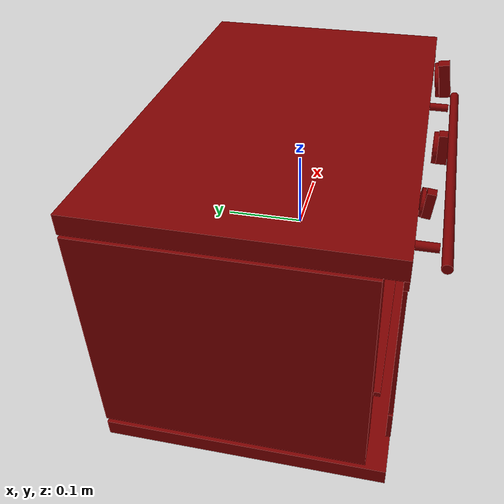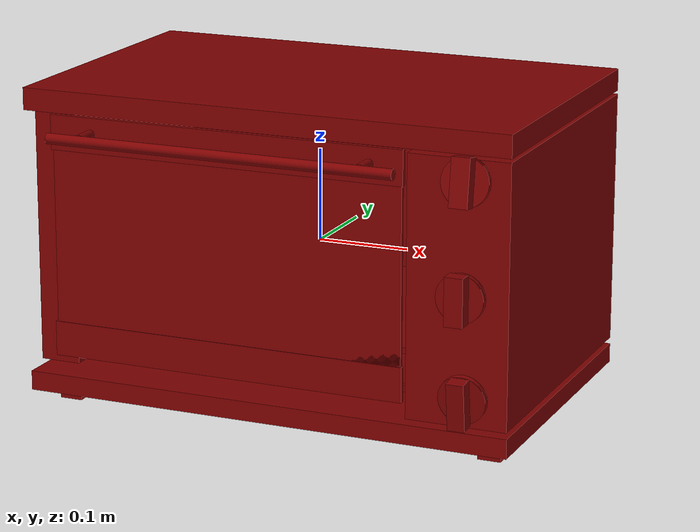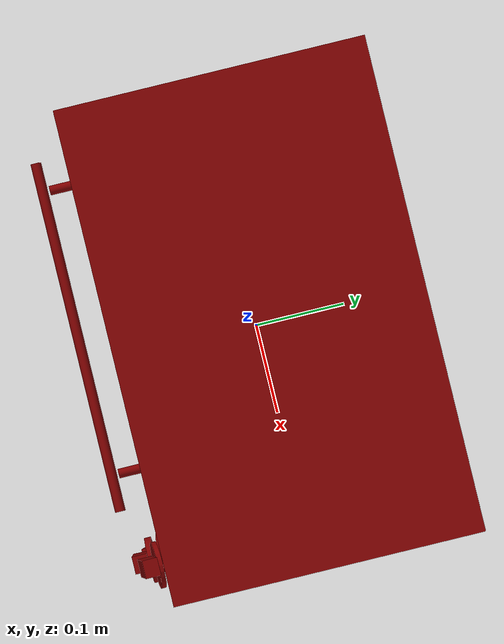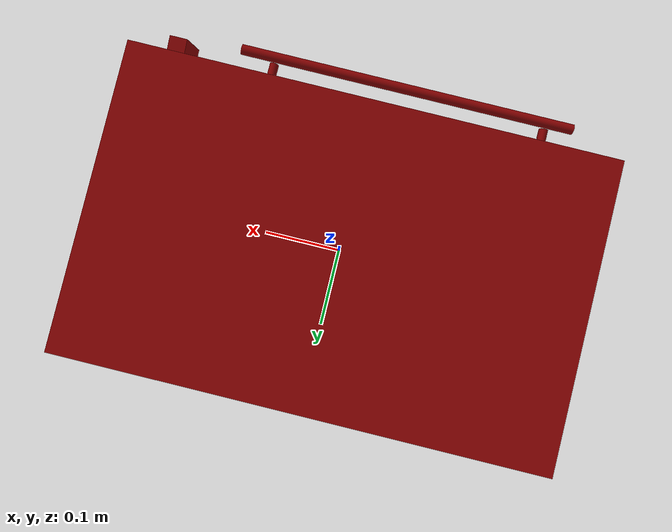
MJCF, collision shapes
<?xml version='1.0' encoding='UTF-8'?>
<mujoco model="model">
  <option timestep="0.002" gravity="0.0 0.0 -9.81"/>
  <compiler angle="radian"/>
  <asset>
    <mesh file="visuals/door.obj" name="door_vis"/>
    <mesh file="visuals/knob_function.obj" name="knob_function_vis"/>
    <mesh file="visuals/knob_temp.obj" name="knob_temp_vis"/>
    <mesh file="visuals/knob_time.obj" name="knob_time_vis"/>
    <mesh file="visuals/rack0.obj" name="rack0_vis"/>
    <mesh file="visuals/Body001.obj" name="Body001_vis"/>
    <mesh file="visuals/window.obj" name="window_vis"/>
    <texture file="visuals/T_BC001.png" name="Body001_material" type="2d"/>
    <material name="Body001_material" rgba="1 1 1 1.0" texture="Body001_material" shininess="0.1" specular="4"/>
    <texture file="visuals/T_BC001.png" name="door_material" type="2d"/>
    <material name="door_material" rgba="1 1 1 1.0" texture="door_material" shininess="0.1" specular="4"/>
    <texture file="visuals/T_BC001.png" name="window_material" type="2d"/>
    <material name="window_material" rgba="1 1 1 0.699999988079071" texture="window_material" shininess="0.1" specular="4"/>
    <texture file="visuals/T_BC001.png" name="knob_function_material" type="2d"/>
    <material name="knob_function_material" rgba="1 1 1 1.0" texture="knob_function_material" shininess="0.1" specular="4"/>
    <texture file="visuals/T_BC001.png" name="knob_temp_material" type="2d"/>
    <material name="knob_temp_material" rgba="1 1 1 1.0" texture="knob_temp_material" shininess="0.1" specular="4"/>
    <texture file="visuals/T_BC001.png" name="knob_time_material" type="2d"/>
    <material name="knob_time_material" rgba="1 1 1 1.0" texture="knob_time_material" shininess="0.1" specular="4"/>
    <texture file="visuals/T_BC001.png" name="rack0_material" type="2d"/>
    <material name="rack0_material" rgba="1 1 1 1.0" texture="rack0_material" shininess="0.1" specular="4"/>
  </asset>
  <default>
    <default class="visual">
      <geom conaffinity="0" contype="0" group="1" type="mesh"/>
    </default>
    <default class="collision">
      <geom group="0" rgba="0.5 0 0 0.5"/>
    </default>
    <default class="spawn">
      <geom group="0" rgba="1 1 1 0.5" contype="0" conaffinity="0"/>
      <site group="0" rgba="1 1 1 0.5"/>
    </default>
    <default class="region">
      <geom group="1" conaffinity="0" contype="0" rgba="0 1 0 0"/>
    </default>
  </default>
  <worldbody>
    <body>
      <body name="object">
        <geom mesh="Body001_vis" type="mesh" solimp="0.998 0.998 0.001" solref="0.001 1" friction="0.95 0.3 0.1" class="visual" material="Body001_material"/>
        <geom class="collision" type="box" pos="-0.00000001 0.01423303 0.16215625" size="0.270452082157135 0.1699085831642151 0.012023569084703922" quat="1.0 0.0 0.0 0.0"/>
        <geom class="collision" type="box" pos="-0.00000001 0.01423303 -0.14761402" size="0.270452082157135 0.1699085831642151 0.010556421242654324" quat="1.0 0.0 0.0 0.0"/>
        <geom class="collision" type="box" pos="-0.24825311 0.02639157 0.00811598" size="0.022198986262083054 0.15775004029273987 0.1382344365119934" quat="1.0 0.0 0.0 0.0"/>
        <geom class="collision" type="box" pos="0.21612343 0.01377216 0.00811598" size="0.05432868003845215 0.1703694462776184 0.1382344365119934" quat="1.0 0.0 0.0 0.0"/>
        <geom class="collision" type="box" pos="0.24142553 -0.11238689 -0.16579765" size="0.012542815878987312 0.01298120804131031 0.008328156545758247" quat="1.0 0.0 0.0 0.0"/>
        <geom class="collision" type="box" pos="-0.23981056 -0.11238689 -0.16579765" size="0.012542815878987312 0.01298120804131031 0.008328156545758247" quat="1.0 0.0 0.0 0.0"/>
        <geom class="collision" type="box" pos="-0.23981056 0.14011523 -0.16579765" size="0.012542815878987312 0.01298120804131031 0.008328156545758247" quat="1.0 0.0 0.0 0.0"/>
        <geom class="collision" type="box" pos="0.24142553 0.14011523 -0.16579765" size="0.012542815878987312 0.01298120804131031 0.008328156545758247" quat="1.0 0.0 0.0 0.0"/>
        <geom class="collision" type="box" pos="-0.03289463 0.16955301 0.00811598" size="0.19400712847709656 0.014055480249226093 0.1382344365119934" quat="1.0 0.0 0.0 0.0"/>
        <geom class="collision" type="box" pos="-0.03289463 -0.09826478 -0.11840052" size="0.19400712847709656 0.0030847685411572456 0.00362002314068377" quat="1.0 0.0 0.0 0.0"/>
        <geom class="collision" type="box" pos="0.16246749 -0.09834358 -0.11818399" size="0.004035026766359806 0.006262065842747688 0.006104288622736931" quat="1.0 0.0 0.0 0.0"/>
        <geom class="collision" type="box" pos="-0.22679745 -0.09834358 -0.11818399" size="0.004035026766359806 0.006262065842747688 0.006104288622736931" quat="1.0 0.0 0.0 0.0"/>
        <geom class="collision" type="box" pos="-0.22679745 0.10738500 -0.11818399" size="0.004035026766359806 0.006262065842747688 0.006104288622736931" quat="1.0 0.0 0.0 0.0"/>
        <geom class="collision" type="box" pos="0.16246749 0.10738500 -0.11818399" size="0.004035026766359806 0.006262065842747688 0.006104288622736931" quat="1.0 0.0 0.0 0.0"/>
        <geom class="collision" type="box" pos="-0.03289463 0.10746379 -0.11840052" size="0.19400712847709656 0.0030847685411572456 0.00362002314068377" quat="1.0 0.0 0.0 0.0"/>
        <body name="door">
          <joint axis="1.0 0.0 0.0" pos="-0.03187266 -0.15226012 -0.13404089" limited="true" name="door_joint" range="0.0 1.3707963267948966" type="hinge" damping="1" frictionloss="1" armature=".01" stiffness="0.3" springref="-0.5"/>
          <geom mesh="door_vis" type="mesh" solimp="0.998 0.998 0.001" solref="0.001 1" friction="0.95 0.3 0.1" class="visual" material="door_material"/>
          <geom class="collision" type="box" pos="-0.04033926 -0.15254131 0.01755554" size="0.19597947597503662 0.002326573943719268 0.12690633535385132" quat="1.0 0.0 0.0 0.0" name="door_main"/>
          <geom class="collision" type="cylinder" pos="-0.03162731 -0.18893236 0.13121565" size="0.0057191429659724236 0.19184528291225433" quat="0.49999937415122986 0.5000000596046448 -0.5000005960464478 -0.4999999403953552" name="door_handle_main"/>
          <geom class="collision" type="box" pos="-0.04074867 -0.15307462 -0.09567610" size="0.19788704812526703 0.002859795233234763 0.018833249807357788" quat="1.0 0.0 0.0 0.0"/>
          <geom class="collision" type="box" pos="-0.04074867 -0.15307462 0.12961925" size="0.19788758456707 0.002859803382307291 0.018833281472325325" quat="1.0 0.0 0.0 0.0"/>
          <geom class="collision" type="cylinder" pos="0.12055923 -0.16856326 0.13099554" size="0.005087293218821287 0.012405325658619404" quat="0.7071067094802856 0.7071068286895752 0.0 0.0"/>
          <geom class="collision" type="cylinder" pos="-0.19166563 -0.16856326 0.13099554" size="0.005087293218821287 0.012405325658619404" quat="0.7071067094802856 0.7071068286895752 0.0 0.0"/>
          <body name="window">
            <geom mesh="window_vis" type="mesh" solimp="0.998 0.998 0.001" solref="0.001 1" friction="0.95 0.3 0.1" class="visual" material="window_material"/>
            <geom class="collision" type="box" pos="-0.04033926 -0.15254131 0.01755554" size="0.19597959518432617 0.0023265748750418425 0.1269063949584961" quat="1.0 0.0 0.0 0.0"/>
          </body>
        </body>
        <body name="knob_function">
          <joint axis="0.0 1.0 0.0" pos="0.22600214 -0.18215631 0.00930516" limited="true" name="knob_function_joint" range="0.0 3.9269908169872414" type="hinge" damping="0.05" armature="1" frictionloss="0.75"/>
          <geom mesh="knob_function_vis" type="mesh" solimp="0.998 0.998 0.001" solref="0.001 1" friction="0.95 0.3 0.1" class="visual" material="knob_function_material"/>
          <geom class="collision" type="cylinder" pos="0.22601201 -0.17351025 0.00926118" size="0.02550620213150978 0.003547457978129387" quat="0.7071067094802856 0.7071068286895752 0.0 0.0" friction="100 0.5 0.01"/>
          <geom class="collision" type="box" pos="0.22600386 -0.18574071 0.01022234" size="0.009824174456298351 0.008414632640779018 0.025297528132796288" quat="1.0 0.0 0.0 0.0" name="knob_function_main" friction="100 0.5 0.01"/>
        </body>
        <body name="knob_temp">
          <joint axis="0.0 0.9914025068283081 -0.1308482140302658" pos="0.22600214 -0.17036433 0.12546515" limited="true" name="knob_temp_joint" range="0.0 4.276056667386108" type="hinge" damping="0.05" armature="1" frictionloss="0.75"/>
          <geom mesh="knob_temp_vis" type="mesh" solimp="0.998 0.998 0.001" solref="0.001 1" friction="0.95 0.3 0.1" class="visual" material="knob_temp_material"/>
          <geom class="collision" type="cylinder" pos="0.22601201 -0.16349217 0.12436071" size="0.02550620213150978 0.0026782257482409477" quat="0.7548805475234985 0.6558622717857361 -1.0993246057261376e-17 1.0993251847525664e-17" friction="100 0.5 0.01"/>
          <geom class="collision" type="box" pos="0.22600386 -0.17355327 0.12673628" size="0.009824174456298351 0.008267324417829514 0.025249572470784187" quat="0.997356653213501 -0.07266195118427277 -1.6134194243793757e-17 1.4498817238512681e-25" name="knob_temp_main" friction="100 0.5 0.01"/>
        </body>
        <body name="knob_time">
          <joint axis="1.5203916734824264e-18 0.9931526184082031 0.1168229877948761" pos="0.22597307 -0.17288781 -0.10035973" limited="true" name="knob_time_joint" range="0.0 3.2288591161895095" type="hinge" damping="0.05" armature="1" frictionloss="0.75"/>
          <geom mesh="knob_time_vis" type="mesh" solimp="0.998 0.998 0.001" solref="0.001 1" friction="0.95 0.3 0.1" class="visual" material="knob_time_material"/>
          <geom class="collision" type="cylinder" pos="0.22601201 -0.16372660 -0.09847136" size="0.02550620026886463 0.0032028122805058956" quat="0.6666486859321594 0.7453721165657043 8.740040810252656e-18 -8.740045773336331e-18" friction="100 0.5 0.01"/>
          <geom class="collision" type="box" pos="0.22600386 -0.17620776 -0.10034538" size="0.009286690503358841 0.008267322555184364 0.025249570608139038" quat="0.9981943368911743 0.06006745249032974 1.3337646312442843e-17 2.3735828701207404e-24" name="knob_time_main" friction="100 0.5 0.01"/>
        </body>
        <body name="rack0">
          <geom class="region" name="reg_rack0" type="box" pos="-0.03225746 -0.004031770000000004 0.041232315000000005" size="0.18788412999999998 0.13230071 0.097599265"/>
          <joint axis="0.0 -1.0 0.0" pos="-0.03182541 -0.00239024 -0.06486332" limited="true" name="rack0_joint" range="0.0 0.20" type="slide" damping="1" frictionloss="1" armature=".01" stiffness="0.05"/>
          <geom mesh="rack0_vis" type="mesh" solimp="0.998 0.998 0.001" solref="0.001 1" friction="0.95 0.3 0.1" class="visual" material="rack0_material"/>
          <geom class="collision" type="box" pos="-0.03225054 -0.00254591 -0.06415167" size="0.19015224277973175 0.1364896446466446 0.0032051908783614635" quat="1.0 0.0 0.0 0.0"/>
        </body>
        <geom class="region" name="reg_int" type="box" pos="-0.03225746 0.002018825000000002 0.019536739999999997" size="0.18788412999999998 0.138351305 0.1283802"/>
        <geom class="region" name="reg_main" type="box" pos="1.0000000022492017e-08 0.01610847 2.7000000000013125e-05" size="0.27145211 0.17974837 0.17515282"/>
      </body>
    </body>
  </worldbody>
  <actuator>
    <motor name="door_joint_actuator" joint="door_joint" gear="50"/>
    <motor name="knob_function_joint_actuator" joint="knob_function_joint" gear="50"/>
    <motor name="knob_temp_joint_actuator" joint="knob_temp_joint" gear="50"/>
    <motor name="knob_time_joint_actuator" joint="knob_time_joint" gear="50"/>
    <motor name="rack0_joint_actuator" joint="rack0_joint" gear="50"/>
  </actuator>
</mujoco>
